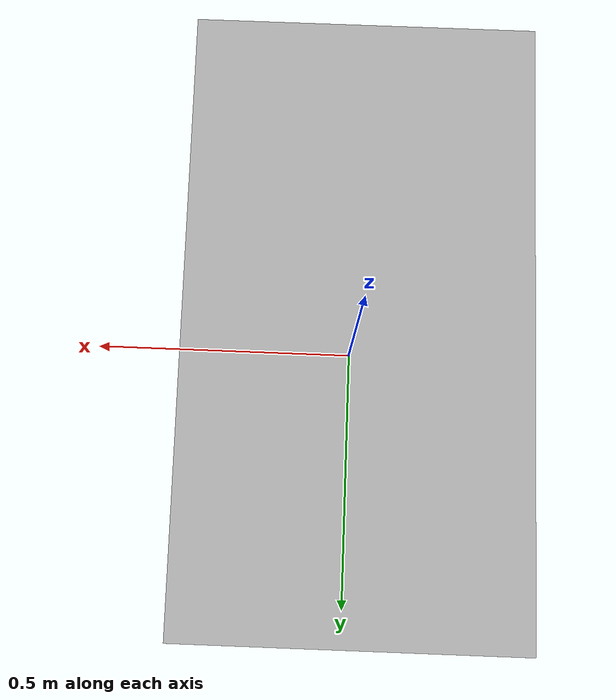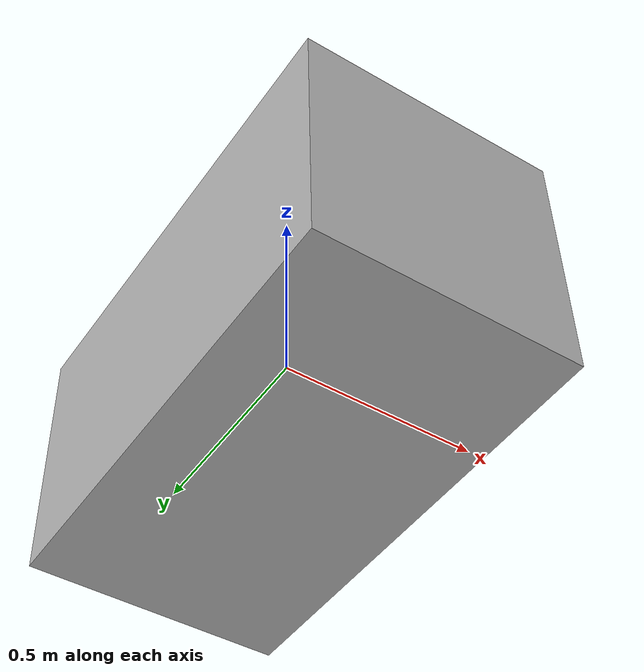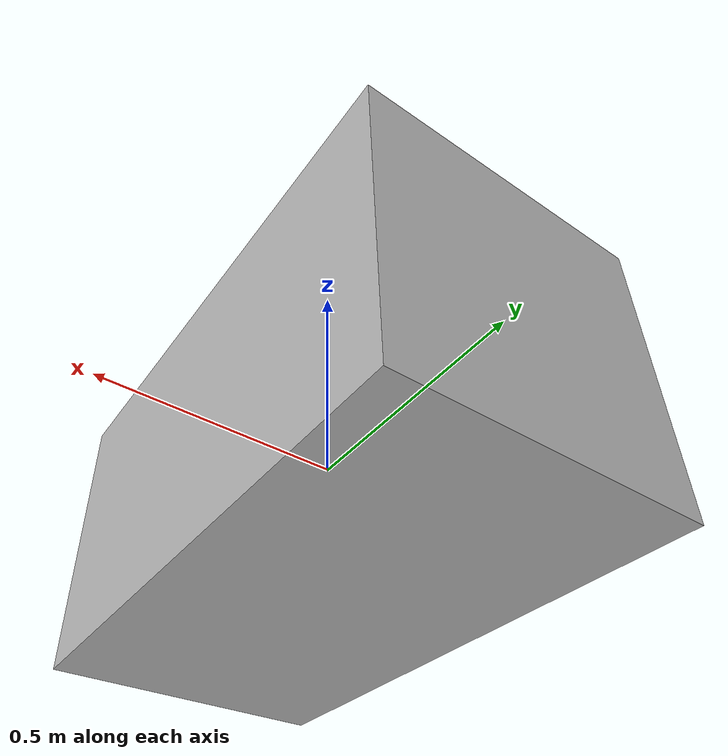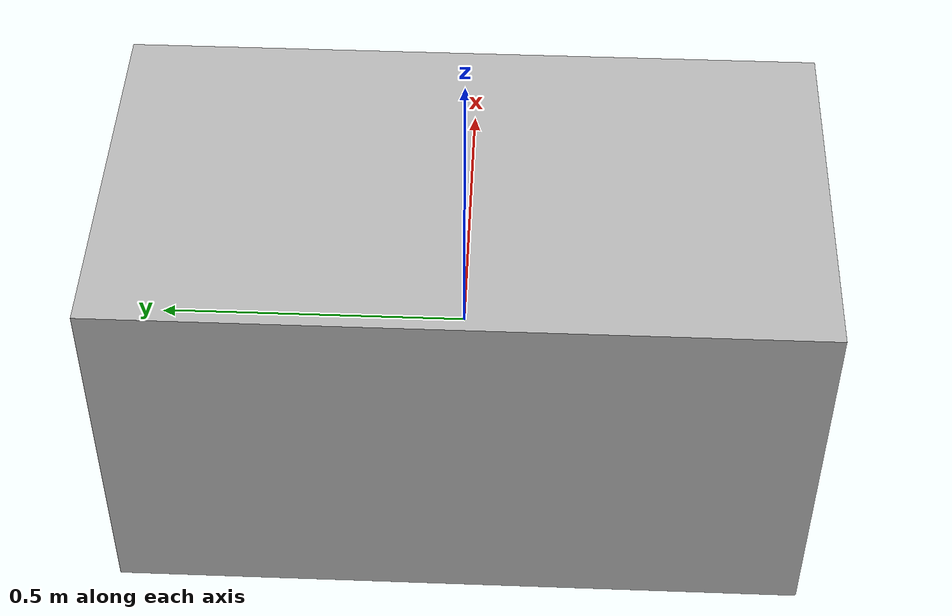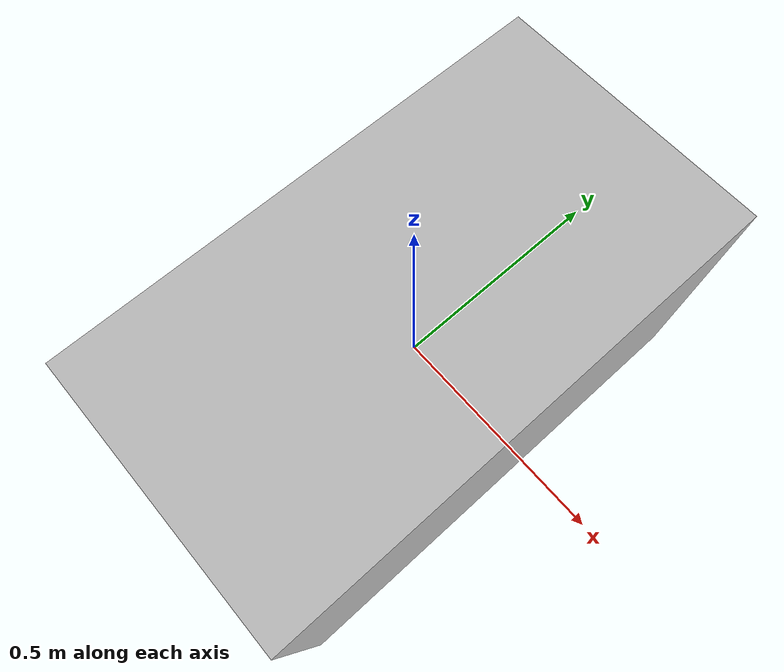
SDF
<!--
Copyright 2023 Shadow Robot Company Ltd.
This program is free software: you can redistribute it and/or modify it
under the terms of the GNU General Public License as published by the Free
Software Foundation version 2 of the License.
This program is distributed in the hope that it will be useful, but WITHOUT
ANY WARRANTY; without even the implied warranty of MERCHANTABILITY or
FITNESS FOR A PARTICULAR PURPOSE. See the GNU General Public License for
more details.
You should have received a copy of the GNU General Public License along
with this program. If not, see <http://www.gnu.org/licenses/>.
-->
<?xml version='1.0'?>

<sdf version="1.4">
  <model name="mobile_base_rob@work4">
    <static>true</static>
    <link name="link">
      <pose>0 0 0 0 0 0</pose>
      <collision name="collision">
        <geometry>
          <box>
            <size>0.62 1.12 0.62</size>
          </box>
        </geometry>
      </collision>
      <visual name="visual">
        <geometry>
          <box>
            <size>0.62 1.12 0.62</size>
          </box>
        </geometry>
      </visual>
    </link>
  </model>
</sdf>
